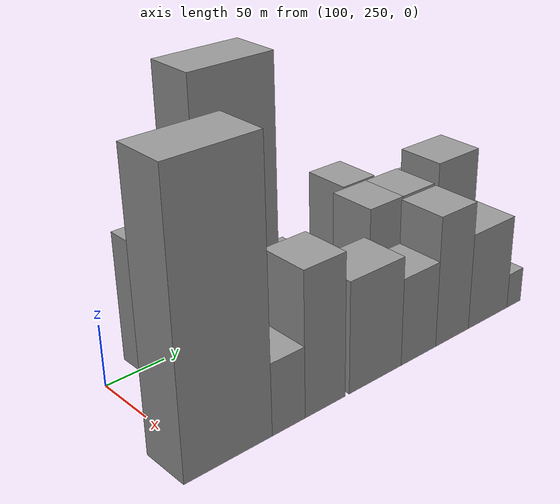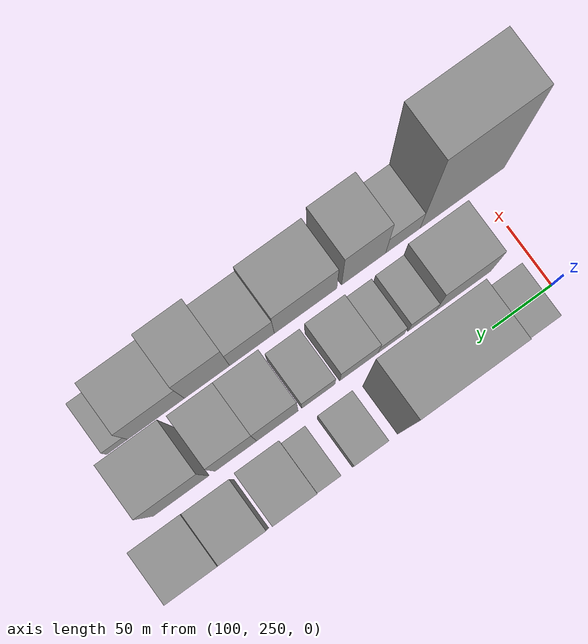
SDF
<sdf version="1.6">
 <world name="default">
  <model name="building_24">
   <static>1</static>
   <pose>100.0000 294.7581 0 0.000000 0.000000 0.000000</pose>
   <link name="link">
    <pose>0 0 52.50 0 0 0</pose>
    <collision name="collision"><geometry><box><size>40.0000 33.3922 105.0000</size></box></geometry></collision>
    <visual name="visual">
     <cast_shadows>0</cast_shadows>
     <geometry><box><size>40.0000 33.3922 105.0000</size></box></geometry>
     <material>
      <script>
       <uri>model://grey_wall/materials/scripts</uri>
       <uri>model://grey_wall/materials/textures</uri>
       <name>vrc/grey_wall</name>
      </script>
     </material>
    </visual>
   </link>
  </model>
  <model name="building_25">
   <static>1</static>
   <pose>100.0000 358.0408 0 0.000000 0.000000 0.000000</pose>
   <link name="link">
    <pose>0 0 109.50 0 0 0</pose>
    <collision name="collision"><geometry><box><size>40.0000 73.1731 219.0000</size></box></geometry></collision>
    <visual name="visual">
     <cast_shadows>0</cast_shadows>
     <geometry><box><size>40.0000 73.1731 219.0000</size></box></geometry>
     <material>
      <script>
       <uri>model://grey_wall/materials/scripts</uri>
       <uri>model://grey_wall/materials/textures</uri>
       <name>vrc/grey_wall</name>
      </script>
     </material>
    </visual>
   </link>
  </model>
  <model name="building_26">
   <static>1</static>
   <pose>100.0000 418.4843 0 0.000000 0.000000 0.000000</pose>
   <link name="link">
    <pose>0 0 24.00 0 0 0</pose>
    <collision name="collision"><geometry><box><size>40.0000 27.7140 48.0000</size></box></geometry></collision>
    <visual name="visual">
     <cast_shadows>0</cast_shadows>
     <geometry><box><size>40.0000 27.7140 48.0000</size></box></geometry>
     <material>
      <script>
       <uri>model://grey_wall/materials/scripts</uri>
       <uri>model://grey_wall/materials/textures</uri>
       <name>vrc/grey_wall</name>
      </script>
     </material>
    </visual>
   </link>
  </model>
  <model name="building_27">
   <static>1</static>
   <pose>100.0000 452.0103 0 0.000000 0.000000 0.000000</pose>
   <link name="link">
    <pose>0 0 16.50 0 0 0</pose>
    <collision name="collision"><geometry><box><size>40.0000 19.3379 33.0000</size></box></geometry></collision>
    <visual name="visual">
     <cast_shadows>0</cast_shadows>
     <geometry><box><size>40.0000 19.3379 33.0000</size></box></geometry>
     <material>
      <script>
       <uri>model://grey_wall/materials/scripts</uri>
       <uri>model://grey_wall/materials/textures</uri>
       <name>vrc/grey_wall</name>
      </script>
     </material>
    </visual>
   </link>
  </model>
  <model name="building_28">
   <static>1</static>
   <pose>100.0000 478.5497 0 0.000000 0.000000 0.000000</pose>
   <link name="link">
    <pose>0 0 48.00 0 0 0</pose>
    <collision name="collision"><geometry><box><size>40.0000 33.7410 96.0000</size></box></geometry></collision>
    <visual name="visual">
     <cast_shadows>0</cast_shadows>
     <geometry><box><size>40.0000 33.7410 96.0000</size></box></geometry>
     <material>
      <script>
       <uri>model://grey_wall/materials/scripts</uri>
       <uri>model://grey_wall/materials/textures</uri>
       <name>vrc/grey_wall</name>
      </script>
     </material>
    </visual>
   </link>
  </model>
  <model name="building_29">
   <static>1</static>
   <pose>100.0000 520.0226 0 0.000000 0.000000 0.000000</pose>
   <link name="link">
    <pose>0 0 31.50 0 0 0</pose>
    <collision name="collision"><geometry><box><size>40.0000 37.2048 63.0000</size></box></geometry></collision>
    <visual name="visual">
     <cast_shadows>0</cast_shadows>
     <geometry><box><size>40.0000 37.2048 63.0000</size></box></geometry>
     <material>
      <script>
       <uri>model://grey_wall/materials/scripts</uri>
       <uri>model://grey_wall/materials/textures</uri>
       <name>vrc/grey_wall</name>
      </script>
     </material>
    </visual>
   </link>
  </model>
  <model name="building_30">
   <static>1</static>
   <pose>100.0000 558.9845 0 0.000000 0.000000 0.000000</pose>
   <link name="link">
    <pose>0 0 34.50 0 0 0</pose>
    <collision name="collision"><geometry><box><size>40.0000 40.7190 69.0000</size></box></geometry></collision>
    <visual name="visual">
     <cast_shadows>0</cast_shadows>
     <geometry><box><size>40.0000 40.7190 69.0000</size></box></geometry>
     <material>
      <script>
       <uri>model://grey_wall/materials/scripts</uri>
       <uri>model://grey_wall/materials/textures</uri>
       <name>vrc/grey_wall</name>
      </script>
     </material>
    </visual>
   </link>
  </model>
  <model name="building_55">
   <static>1</static>
   <pose>152.0000 301.3035 0 0.000000 0.000000 0.000000</pose>
   <link name="link">
    <pose>0 0 43.50 0 0 0</pose>
    <collision name="collision"><geometry><box><size>40.0000 46.8502 87.0000</size></box></geometry></collision>
    <visual name="visual">
     <cast_shadows>0</cast_shadows>
     <geometry><box><size>40.0000 46.8502 87.0000</size></box></geometry>
     <material>
      <script>
       <uri>model://grey_wall/materials/scripts</uri>
       <uri>model://grey_wall/materials/textures</uri>
       <name>vrc/grey_wall</name>
      </script>
     </material>
    </visual>
   </link>
  </model>
  <model name="building_56">
   <static>1</static>
   <pose>152.0000 336.2653 0 0.000000 0.000000 0.000000</pose>
   <link name="link">
    <pose>0 0 21.00 0 0 0</pose>
    <collision name="collision"><geometry><box><size>40.0000 23.0735 42.0000</size></box></geometry></collision>
    <visual name="visual">
     <cast_shadows>0</cast_shadows>
     <geometry><box><size>40.0000 23.0735 42.0000</size></box></geometry>
     <material>
      <script>
       <uri>model://grey_wall/materials/scripts</uri>
       <uri>model://grey_wall/materials/textures</uri>
       <name>vrc/grey_wall</name>
      </script>
     </material>
    </visual>
   </link>
  </model>
  <model name="building_57">
   <static>1</static>
   <pose>152.0000 361.8748 0 0.000000 0.000000 0.000000</pose>
   <link name="link">
    <pose>0 0 19.50 0 0 0</pose>
    <collision name="collision"><geometry><box><size>40.0000 22.1456 39.0000</size></box></geometry></collision>
    <visual name="visual">
     <cast_shadows>0</cast_shadows>
     <geometry><box><size>40.0000 22.1456 39.0000</size></box></geometry>
     <material>
      <script>
       <uri>model://grey_wall/materials/scripts</uri>
       <uri>model://grey_wall/materials/textures</uri>
       <name>vrc/grey_wall</name>
      </script>
     </material>
    </visual>
   </link>
  </model>
  <model name="building_58">
   <static>1</static>
   <pose>152.0000 388.9664 0 0.000000 0.000000 0.000000</pose>
   <link name="link">
    <pose>0 0 30.00 0 0 0</pose>
    <collision name="collision"><geometry><box><size>40.0000 32.0376 60.0000</size></box></geometry></collision>
    <visual name="visual">
     <cast_shadows>0</cast_shadows>
     <geometry><box><size>40.0000 32.0376 60.0000</size></box></geometry>
     <material>
      <script>
       <uri>model://grey_wall/materials/scripts</uri>
       <uri>model://grey_wall/materials/textures</uri>
       <name>vrc/grey_wall</name>
      </script>
     </material>
    </visual>
   </link>
  </model>
  <model name="building_59">
   <static>1</static>
   <pose>152.0000 422.7655 0 0.000000 0.000000 0.000000</pose>
   <link name="link">
    <pose>0 0 25.50 0 0 0</pose>
    <collision name="collision"><geometry><box><size>40.0000 27.5606 51.0000</size></box></geometry></collision>
    <visual name="visual">
     <cast_shadows>0</cast_shadows>
     <geometry><box><size>40.0000 27.5606 51.0000</size></box></geometry>
     <material>
      <script>
       <uri>model://grey_wall/materials/scripts</uri>
       <uri>model://grey_wall/materials/textures</uri>
       <name>vrc/grey_wall</name>
      </script>
     </material>
    </visual>
   </link>
  </model>
  <model name="building_60">
   <static>1</static>
   <pose>152.0000 456.7086 0 0.000000 0.000000 0.000000</pose>
   <link name="link">
    <pose>0 0 51.00 0 0 0</pose>
    <collision name="collision"><geometry><box><size>40.0000 34.3255 102.0000</size></box></geometry></collision>
    <visual name="visual">
     <cast_shadows>0</cast_shadows>
     <geometry><box><size>40.0000 34.3255 102.0000</size></box></geometry>
     <material>
      <script>
       <uri>model://grey_wall/materials/scripts</uri>
       <uri>model://grey_wall/materials/textures</uri>
       <name>vrc/grey_wall</name>
      </script>
     </material>
    </visual>
   </link>
  </model>
  <model name="building_61">
   <static>1</static>
   <pose>152.0000 491.1172 0 0.000000 0.000000 0.000000</pose>
   <link name="link">
    <pose>0 0 51.00 0 0 0</pose>
    <collision name="collision"><geometry><box><size>40.0000 34.4919 102.0000</size></box></geometry></collision>
    <visual name="visual">
     <cast_shadows>0</cast_shadows>
     <geometry><box><size>40.0000 34.4919 102.0000</size></box></geometry>
     <material>
      <script>
       <uri>model://grey_wall/materials/scripts</uri>
       <uri>model://grey_wall/materials/textures</uri>
       <name>vrc/grey_wall</name>
      </script>
     </material>
    </visual>
   </link>
  </model>
  <model name="building_62">
   <static>1</static>
   <pose>152.0000 536.3195 0 0.000000 0.000000 0.000000</pose>
   <link name="link">
    <pose>0 0 58.50 0 0 0</pose>
    <collision name="collision"><geometry><box><size>40.0000 45.9126 117.0000</size></box></geometry></collision>
    <visual name="visual">
     <cast_shadows>0</cast_shadows>
     <geometry><box><size>40.0000 45.9126 117.0000</size></box></geometry>
     <material>
      <script>
       <uri>model://grey_wall/materials/scripts</uri>
       <uri>model://grey_wall/materials/textures</uri>
       <name>vrc/grey_wall</name>
      </script>
     </material>
    </visual>
   </link>
  </model>
  <model name="building_82">
   <static>1</static>
   <pose>204.0000 263.6049 0 0.000000 0.000000 0.000000</pose>
   <link name="link">
    <pose>0 0 108.00 0 0 0</pose>
    <collision name="collision"><geometry><box><size>40.0000 71.4243 216.0000</size></box></geometry></collision>
    <visual name="visual">
     <cast_shadows>0</cast_shadows>
     <geometry><box><size>40.0000 71.4243 216.0000</size></box></geometry>
     <material>
      <script>
       <uri>model://grey_wall/materials/scripts</uri>
       <uri>model://grey_wall/materials/textures</uri>
       <name>vrc/grey_wall</name>
      </script>
     </material>
    </visual>
   </link>
  </model>
  <model name="building_83">
   <static>1</static>
   <pose>204.0000 313.8555 0 0.000000 0.000000 0.000000</pose>
   <link name="link">
    <pose>0 0 28.50 0 0 0</pose>
    <collision name="collision"><geometry><box><size>40.0000 29.0768 57.0000</size></box></geometry></collision>
    <visual name="visual">
     <cast_shadows>0</cast_shadows>
     <geometry><box><size>40.0000 29.0768 57.0000</size></box></geometry>
     <material>
      <script>
       <uri>model://grey_wall/materials/scripts</uri>
       <uri>model://grey_wall/materials/textures</uri>
       <name>vrc/grey_wall</name>
      </script>
     </material>
    </visual>
   </link>
  </model>
  <model name="building_84">
   <static>1</static>
   <pose>204.0000 346.9499 0 0.000000 0.000000 0.000000</pose>
   <link name="link">
    <pose>0 0 57.00 0 0 0</pose>
    <collision name="collision"><geometry><box><size>40.0000 37.1121 114.0000</size></box></geometry></collision>
    <visual name="visual">
     <cast_shadows>0</cast_shadows>
     <geometry><box><size>40.0000 37.1121 114.0000</size></box></geometry>
     <material>
      <script>
       <uri>model://grey_wall/materials/scripts</uri>
       <uri>model://grey_wall/materials/textures</uri>
       <name>vrc/grey_wall</name>
      </script>
     </material>
    </visual>
   </link>
  </model>
  <model name="building_85">
   <static>1</static>
   <pose>204.0000 395.6365 0 0.000000 0.000000 0.000000</pose>
   <link name="link">
    <pose>0 0 45.00 0 0 0</pose>
    <collision name="collision"><geometry><box><size>40.0000 52.2611 90.0000</size></box></geometry></collision>
    <visual name="visual">
     <cast_shadows>0</cast_shadows>
     <geometry><box><size>40.0000 52.2611 90.0000</size></box></geometry>
     <material>
      <script>
       <uri>model://grey_wall/materials/scripts</uri>
       <uri>model://grey_wall/materials/textures</uri>
       <name>vrc/grey_wall</name>
      </script>
     </material>
    </visual>
   </link>
  </model>
  <model name="building_86">
   <static>1</static>
   <pose>204.0000 440.4261 0 0.000000 0.000000 0.000000</pose>
   <link name="link">
    <pose>0 0 36.00 0 0 0</pose>
    <collision name="collision"><geometry><box><size>40.0000 37.3181 72.0000</size></box></geometry></collision>
    <visual name="visual">
     <cast_shadows>0</cast_shadows>
     <geometry><box><size>40.0000 37.3181 72.0000</size></box></geometry>
     <material>
      <script>
       <uri>model://grey_wall/materials/scripts</uri>
       <uri>model://grey_wall/materials/textures</uri>
       <name>vrc/grey_wall</name>
      </script>
     </material>
    </visual>
   </link>
  </model>
  <model name="building_87">
   <static>1</static>
   <pose>204.0000 477.8053 0 0.000000 0.000000 0.000000</pose>
   <link name="link">
    <pose>0 0 54.00 0 0 0</pose>
    <collision name="collision"><geometry><box><size>40.0000 37.4404 108.0000</size></box></geometry></collision>
    <visual name="visual">
     <cast_shadows>0</cast_shadows>
     <geometry><box><size>40.0000 37.4404 108.0000</size></box></geometry>
     <material>
      <script>
       <uri>model://grey_wall/materials/scripts</uri>
       <uri>model://grey_wall/materials/textures</uri>
       <name>vrc/grey_wall</name>
      </script>
     </material>
    </visual>
   </link>
  </model>
  <model name="building_88">
   <static>1</static>
   <pose>204.0000 520.0222 0 0.000000 0.000000 0.000000</pose>
   <link name="link">
    <pose>0 0 40.50 0 0 0</pose>
    <collision name="collision"><geometry><box><size>40.0000 46.9932 81.0000</size></box></geometry></collision>
    <visual name="visual">
     <cast_shadows>0</cast_shadows>
     <geometry><box><size>40.0000 46.9932 81.0000</size></box></geometry>
     <material>
      <script>
       <uri>model://grey_wall/materials/scripts</uri>
       <uri>model://grey_wall/materials/textures</uri>
       <name>vrc/grey_wall</name>
      </script>
     </material>
    </visual>
   </link>
  </model>
  <model name="building_89">
   <static>1</static>
   <pose>204.0000 552.0953 0 0.000000 0.000000 0.000000</pose>
   <link name="link">
    <pose>0 0 15.00 0 0 0</pose>
    <collision name="collision"><geometry><box><size>40.0000 17.1531 30.0000</size></box></geometry></collision>
    <visual name="visual">
     <cast_shadows>0</cast_shadows>
     <geometry><box><size>40.0000 17.1531 30.0000</size></box></geometry>
     <material>
      <script>
       <uri>model://grey_wall/materials/scripts</uri>
       <uri>model://grey_wall/materials/textures</uri>
       <name>vrc/grey_wall</name>
      </script>
     </material>
    </visual>
   </link>
  </model>
 </world>
</sdf>
